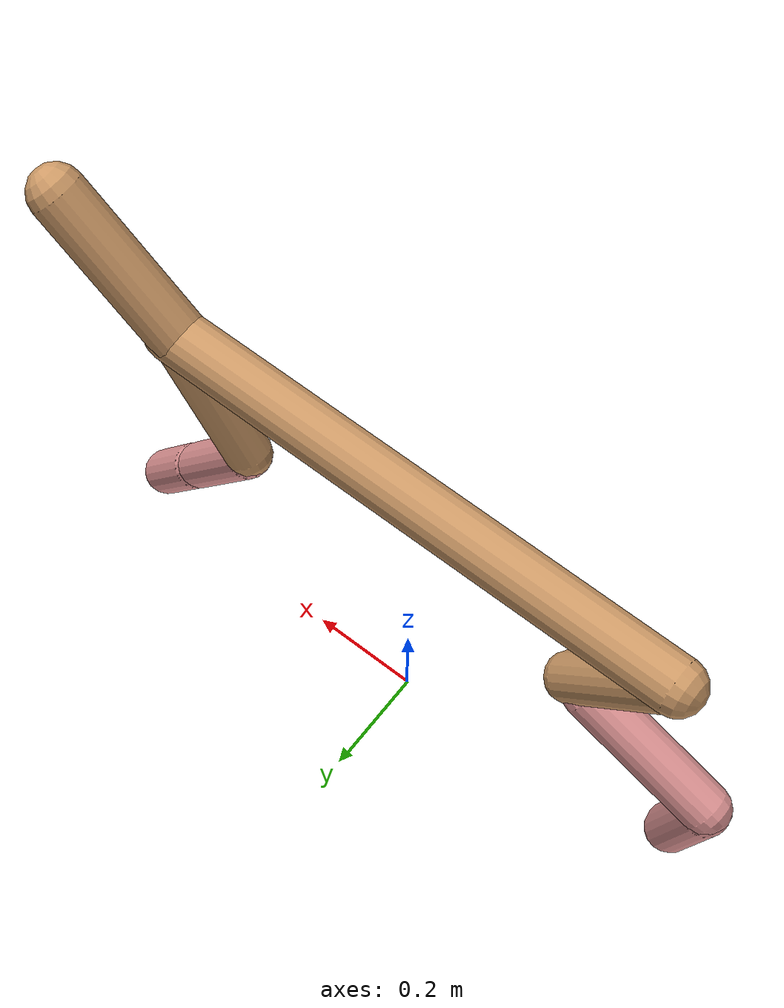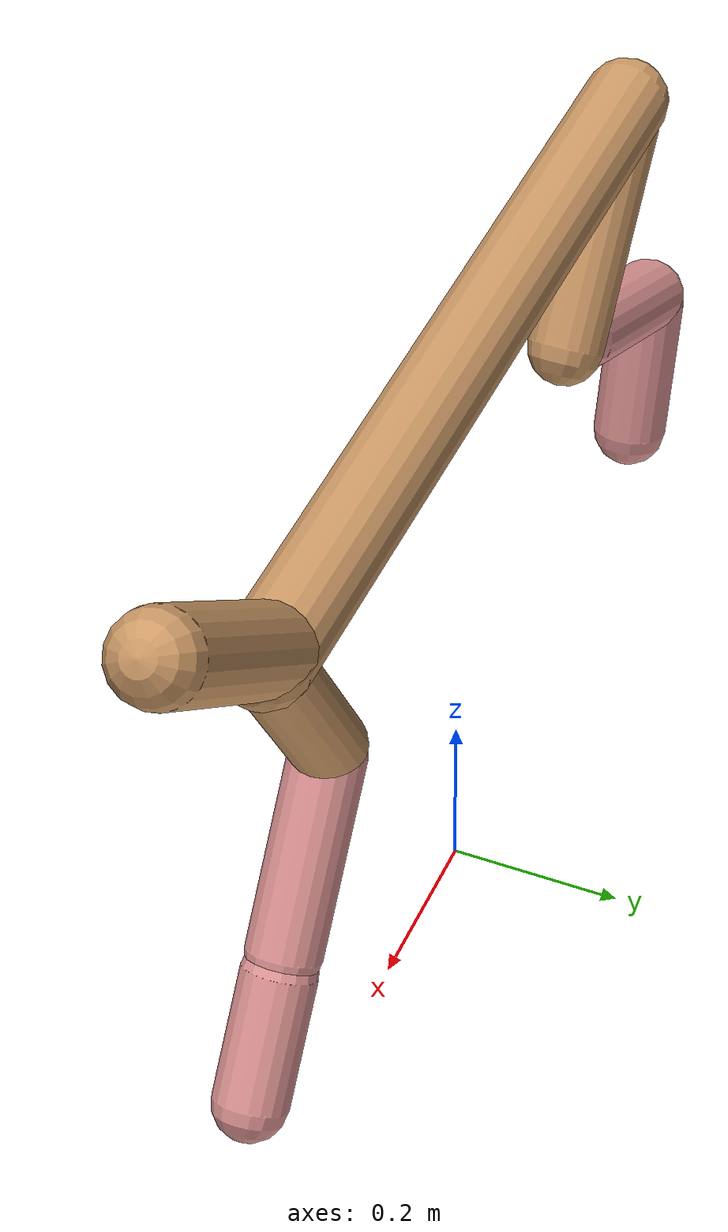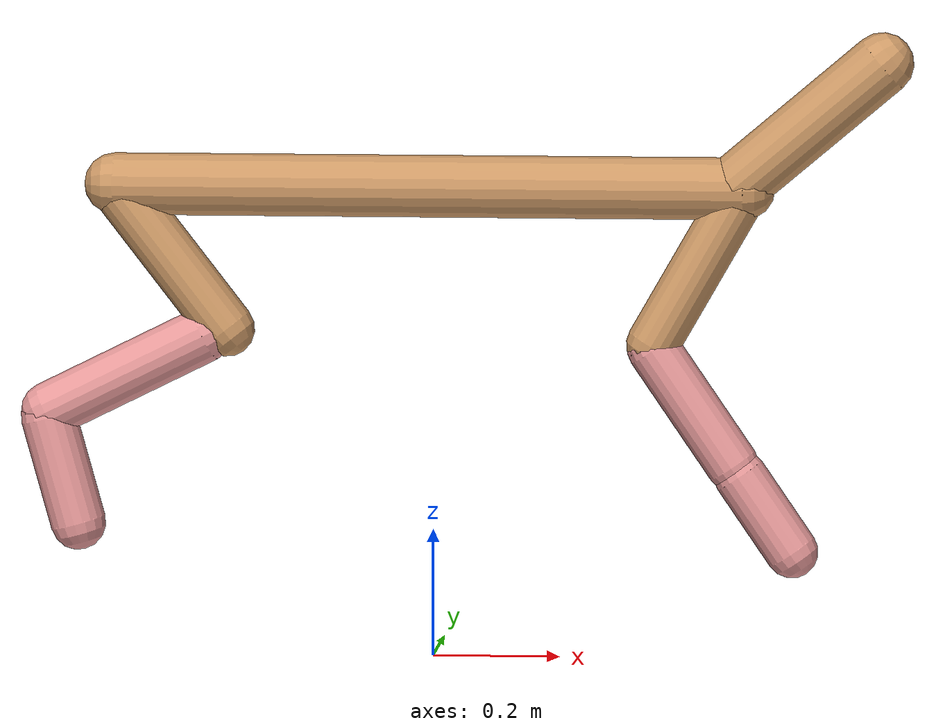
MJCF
<mujoco model="cheetah">
  <compiler angle="radian" coordinate="local" inertiafromgeom="true" settotalmass="14" />
  <default>
    <joint armature=".1" damping=".01" limited="true" solimplimit="0 .8 .03" solreflimit=".02 1" stiffness="8" />
    <geom conaffinity="0" condim="3" contype="1" friction="0.8 .1 .1" rgba="0.8 0.6 .4 1" solimp="0.0 0.8 0.01" solref="0.02 1" />
    <motor ctrllimited="true" ctrlrange="-1 1" />
  </default>
  <size nstack="300000" nuser_geom="1" />
  <option gravity="0 0 -9.81" timestep="0.01" />
  <worldbody>
    <body name="torso" pos="0.0 0.0 0.7410397687485804">
      <joint armature="0" axis="1 0 0" damping="0" limited="false" name="ignorex" pos="0 0 0" stiffness="0" type="slide" />
      <joint armature="0" axis="0 0 1" damping="0" limited="false" name="ignorez" pos="0 0 0" stiffness="0" type="slide" />
      <joint armature="0" axis="0 1 0" damping="0" limited="false" name="ignorey" pos="0 0 0" stiffness="0" type="hinge" />
      <geom fromto="-0.5 0.0 0.0 0.48607388085483655 0.0 0.0" name="torso" size="0.04875312355950634" type="capsule" />
      <geom axisangle="0 1 0 .87" name="head" pos="0.5860738808548366 0.0 0.1" size="0.04900253524158859 0.15" type="capsule" />

      <body name="bthigh" pos="-.5 0 0">
        <joint axis="0 1 0" damping="6" name="bthigh" pos="0 0 0" range="-.52 1.05" stiffness="240" type="hinge" />
        <geom axisangle="0 1 0 -3.8" name="bthigh" pos="0.09328144229084077 0.0 -0.121265874978093" size="0.04393352664774499 0.13398074605113372" type="capsule" />
        <body name="bshin" pos="0.14656288458168154 0.0 -0.232531749956186">
          <joint axis="0 1 0" damping="4.5" name="bshin" pos="0 0 0" range="-.785 .785" stiffness="180" type="hinge" />
          <geom axisangle="0 1 0 -2.03" name="bshin" pos="-0.12980422032096636 0.0 -0.06490211016048318" rgba="0.9 0.6 0.6 1" size="0.04393352664774499 0.1386007717770349" type="capsule" />
          <body name="bfoot" pos="-0.2596084406419327 0.0 -0.12980422032096636">
            <joint axis="0 1 0" damping="3" name="bfoot" pos="0 0 0" range="-.4 .785" stiffness="120" type="hinge" />
            <geom axisangle="0 1 0 -.27" name="bfoot" pos="0.027889307202472652 0.0 -0.09017542662132824" rgba="0.9 0.6 0.6 1" size="0.04393352664774499 0.08685648364694186" type="capsule" />
            <inertial mass="10" />
          </body>
        </body>
      </body>
      <body name="fthigh" pos="0.4860738808548366 0.0 0.0">
        <joint axis="0 1 0" damping="4.5" name="fthigh" pos="0 0 0" range="-1.5 0.8" stiffness="180" type="hinge" />
        <geom axisangle="0 1 0 .52" name="fthigh" pos="-0.07287685543803377 0.0 -0.12493175217948643" size="0.0414230800553858 0.13870950757694686" type="capsule" />
        <body name="fshin" pos="-0.14575371087606753 0.0 -0.24986350435897287">
          <joint axis="0 1 0" damping="3" name="fshin" pos="0 0 0" range="-1.2 1.1" stiffness="120" type="hinge" />
          <geom axisangle="0 1 0 -.6" name="fshin" pos="0.06766423648015751 0.0 -0.09368894281867962" rgba="0.9 0.6 0.6 1" size="0.0414230800553858 0.11055043461019826" type="capsule" />
          <body name="ffoot" pos="0.13532847296031503 0.0 -0.18737788563735924">
            <joint axis="0 1 0" damping="1.5" name="ffoot" pos="0 0 0" range="-3.1 -0.3" stiffness="60" type="hinge" />
            <geom axisangle="0 1 0 -.6" name="ffoot" pos="0.04662497871836629 0.0 -0.07252774467301423" rgba="0.9 0.6 0.6 1" size="0.0414230800553858 0.07300500398786677" type="capsule" />
            <inertial mass="10" />
          </body>
        </body>
      </body>
    </body>
  </worldbody>
  <actuator>
    <motor gear="120" joint="bthigh" name="bthigh" />
    <motor gear="90" joint="bshin" name="bshin" />
    <motor gear="60" joint="bfoot" name="bfoot" />
    <motor gear="120" joint="fthigh" name="fthigh" />
    <motor gear="60" joint="fshin" name="fshin" />
    <motor gear="30" joint="ffoot" name="ffoot" />
  </actuator>
</mujoco>
